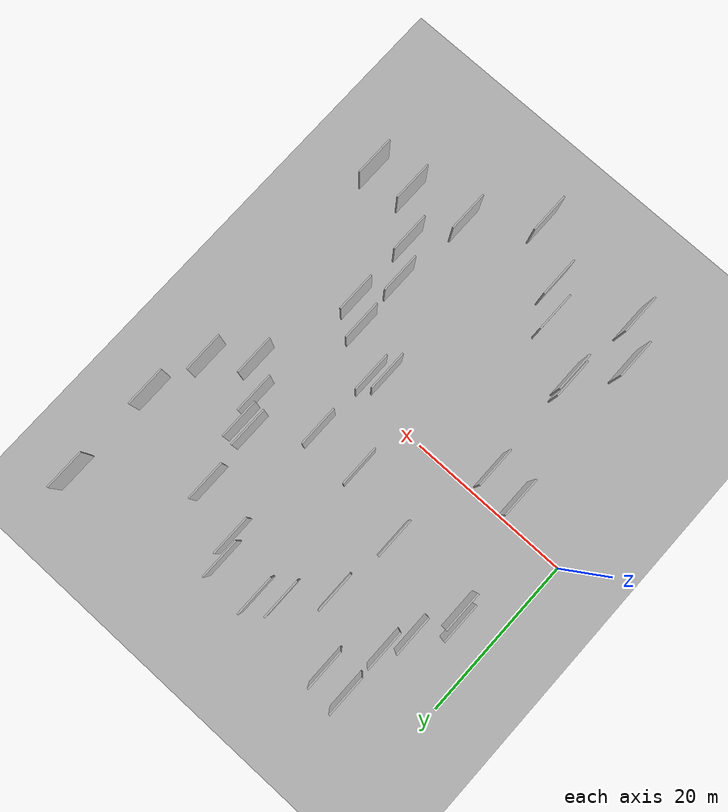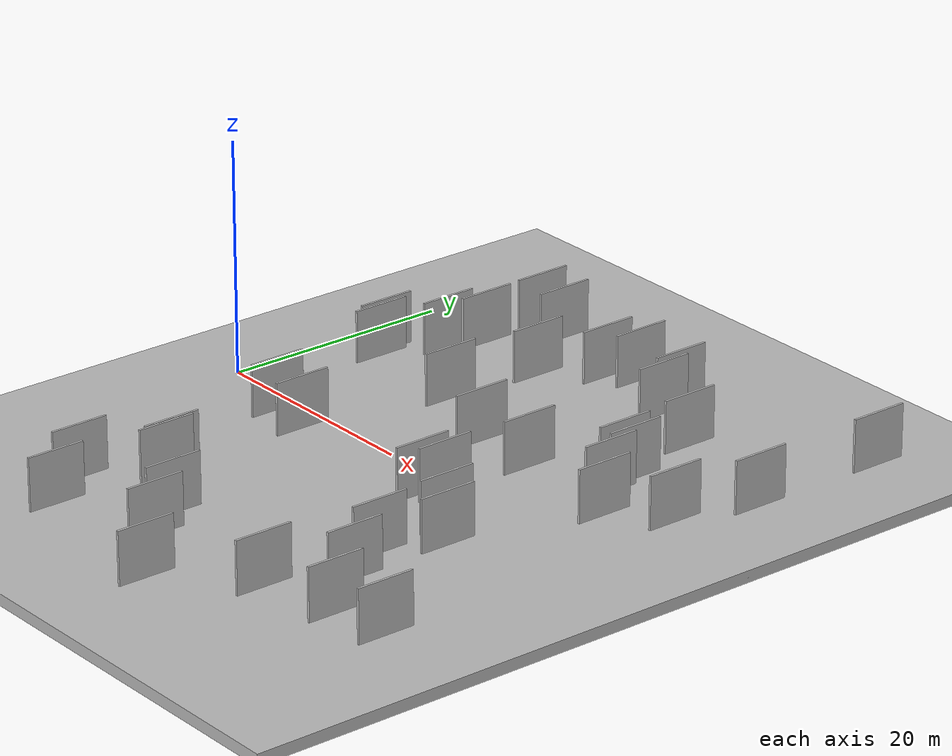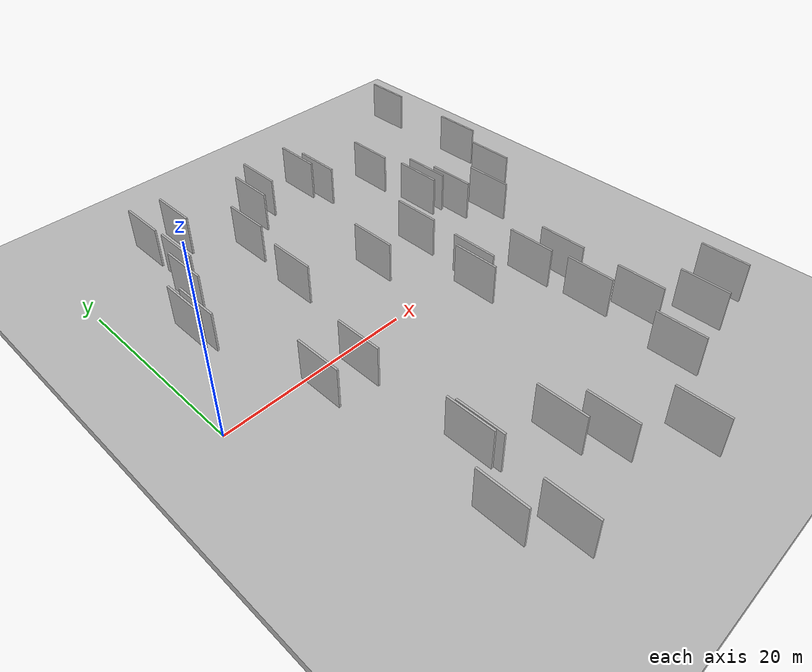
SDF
<?xml version="1.0" encoding="utf-8"?>

<sdf version="1.6">

   <world name="default">

      <gui fullscreen="0">

         <camera name="user_camera">

            <pose>-15 0 4.57585 0 0 0</pose>

            <view_controller>orbit</view_controller>

         </camera>

      </gui>

      <scene>

         <sky>

           <clouds>

             <speed>12</speed>

           </clouds>

         </sky>

         <ambient>0.4 0.4 0.4 1</ambient>

         <background>0.7 0.7 0.7 1</background>

         <shadows>1</shadows>

      </scene>

      <gravity>0 0 -9.8066</gravity>

      <magnetic_field>6e-06 2.3e-05 -4.2e-05</magnetic_field>

      <physics default="0" name="default_physics" type="ode">

         <ode>

            <solver>

               <type>quick</type>

               <iters>10</iters>

               <sor>1.0</sor>

               <use_dynamic_moi_rescaling>0</use_dynamic_moi_rescaling>

            </solver>

            <constraints>

               <cfm>0</cfm>

               <erp>0.2</erp>

               <contact_max_correcting_vel>100</contact_max_correcting_vel>

               <contact_surface_layer>0.001</contact_surface_layer>

            </constraints>

         </ode>

         <max_step_size>0.004</max_step_size>

         <real_time_factor>1</real_time_factor>

         <real_time_update_rate>250</real_time_update_rate>

      </physics>

      <light name="sun" type="directional">

         <cast_shadows>1</cast_shadows>

         <pose>0 0 10 0 0 0</pose>

         <diffuse>0.8 0.8 0.8 1</diffuse>

         <specular>0.2 0.2 0.2 1</specular>

         <attenuation>

            <range>1000</range>

            <constant>0.9</constant>

            <linear>0.01</linear>

            <quadratic>0.001</quadratic>

         </attenuation>

         <direction>-0.5 0.1 -0.9</direction>

      </light>

      <include>

         <name>ground_plane_1</name>

         <uri>model://HANNAS_ground_plane</uri>

         <pose>0 0 0  0 0 0</pose>

      </include>

      <include>

         <name>ground_plane_2</name>

         <uri>model://HANNAS_ground_plane</uri>

         <pose>100 0 0  0 0 0</pose>

      </include>

      <model name="HANNAS_wall_1">

         <static>1</static>

         <pose frame="">33.4776 -5.2390 0.0 0.000000 0.000000 1.570796</pose>

         <link name="link">

            <pose frame="">0 0 2.50 0 0 0</pose>

            <collision name="collision">

               <geometry>

                  <box>

                     <size>5.00 0.2 5.00</size>

                  </box>

               </geometry>

               <max_contacts>10</max_contacts>

               <surface>

                  <contact>

                     <ode/>

                  </contact>

                  <bounce/>

                  <friction>

                     <torsional>

                        <ode/>

                     </torsional>

                     <ode/>

                  </friction>

               </surface>

            </collision>

            <visual name="visual">

               <cast_shadows>0</cast_shadows>

               <geometry>

                  <box>

                     <size>5.00 0.2 5.00</size>

                  </box>

               </geometry>

               <material>

                  <script>

                     <uri>model://HANNAS_wall/materials/scripts</uri>

                     <uri>model://HANNAS_wall/materials/textures</uri>

                     <name>vrc/HANNAS_wall</name>

                  </script>

               </material>

            </visual>

            <self_collide>0</self_collide>

            <enable_wind>0</enable_wind>

            <kinematic>0</kinematic>

         </link>

      </model>

      <model name="HANNAS_wall_2">

         <static>1</static>

         <pose frame="">43.6343 8.6065 0.0 0.000000 0.000000 1.570796</pose>

         <link name="link">

            <pose frame="">0 0 2.50 0 0 0</pose>

            <collision name="collision">

               <geometry>

                  <box>

                     <size>5.00 0.2 5.00</size>

                  </box>

               </geometry>

               <max_contacts>10</max_contacts>

               <surface>

                  <contact>

                     <ode/>

                  </contact>

                  <bounce/>

                  <friction>

                     <torsional>

                        <ode/>

                     </torsional>

                     <ode/>

                  </friction>

               </surface>

            </collision>

            <visual name="visual">

               <cast_shadows>0</cast_shadows>

               <geometry>

                  <box>

                     <size>5.00 0.2 5.00</size>

                  </box>

               </geometry>

               <material>

                  <script>

                     <uri>model://HANNAS_wall/materials/scripts</uri>

                     <uri>model://HANNAS_wall/materials/textures</uri>

                     <name>vrc/HANNAS_wall</name>

                  </script>

               </material>

            </visual>

            <self_collide>0</self_collide>

            <enable_wind>0</enable_wind>

            <kinematic>0</kinematic>

         </link>

      </model>

      <model name="HANNAS_wall_3">

         <static>1</static>

         <pose frame="">7.4464 15.7247 0.0 0.000000 0.000000 1.570796</pose>

         <link name="link">

            <pose frame="">0 0 2.50 0 0 0</pose>

            <collision name="collision">

               <geometry>

                  <box>

                     <size>5.00 0.2 5.00</size>

                  </box>

               </geometry>

               <max_contacts>10</max_contacts>

               <surface>

                  <contact>

                     <ode/>

                  </contact>

                  <bounce/>

                  <friction>

                     <torsional>

                        <ode/>

                     </torsional>

                     <ode/>

                  </friction>

               </surface>

            </collision>

            <visual name="visual">

               <cast_shadows>0</cast_shadows>

               <geometry>

                  <box>

                     <size>5.00 0.2 5.00</size>

                  </box>

               </geometry>

               <material>

                  <script>

                     <uri>model://HANNAS_wall/materials/scripts</uri>

                     <uri>model://HANNAS_wall/materials/textures</uri>

                     <name>vrc/HANNAS_wall</name>

                  </script>

               </material>

            </visual>

            <self_collide>0</self_collide>

            <enable_wind>0</enable_wind>

            <kinematic>0</kinematic>

         </link>

      </model>

      <model name="HANNAS_wall_4">

         <static>1</static>

         <pose frame="">32.9911 -21.9643 0.0 0.000000 0.000000 1.570796</pose>

         <link name="link">

            <pose frame="">0 0 2.50 0 0 0</pose>

            <collision name="collision">

               <geometry>

                  <box>

                     <size>5.00 0.2 5.00</size>

                  </box>

               </geometry>

               <max_contacts>10</max_contacts>

               <surface>

                  <contact>

                     <ode/>

                  </contact>

                  <bounce/>

                  <friction>

                     <torsional>

                        <ode/>

                     </torsional>

                     <ode/>

                  </friction>

               </surface>

            </collision>

            <visual name="visual">

               <cast_shadows>0</cast_shadows>

               <geometry>

                  <box>

                     <size>5.00 0.2 5.00</size>

                  </box>

               </geometry>

               <material>

                  <script>

                     <uri>model://HANNAS_wall/materials/scripts</uri>

                     <uri>model://HANNAS_wall/materials/textures</uri>

                     <name>vrc/HANNAS_wall</name>

                  </script>

               </material>

            </visual>

            <self_collide>0</self_collide>

            <enable_wind>0</enable_wind>

            <kinematic>0</kinematic>

         </link>

      </model>

      <model name="HANNAS_wall_5">

         <static>1</static>

         <pose frame="">11.8727 24.2748 0.0 0.000000 0.000000 1.570796</pose>

         <link name="link">

            <pose frame="">0 0 2.50 0 0 0</pose>

            <collision name="collision">

               <geometry>

                  <box>

                     <size>5.00 0.2 5.00</size>

                  </box>

               </geometry>

               <max_contacts>10</max_contacts>

               <surface>

                  <contact>

                     <ode/>

                  </contact>

                  <bounce/>

                  <friction>

                     <torsional>

                        <ode/>

                     </torsional>

                     <ode/>

                  </friction>

               </surface>

            </collision>

            <visual name="visual">

               <cast_shadows>0</cast_shadows>

               <geometry>

                  <box>

                     <size>5.00 0.2 5.00</size>

                  </box>

               </geometry>

               <material>

                  <script>

                     <uri>model://HANNAS_wall/materials/scripts</uri>

                     <uri>model://HANNAS_wall/materials/textures</uri>

                     <name>vrc/HANNAS_wall</name>

                  </script>

               </material>

            </visual>

            <self_collide>0</self_collide>

            <enable_wind>0</enable_wind>

            <kinematic>0</kinematic>

         </link>

      </model>

      <model name="HANNAS_wall_6">

         <static>1</static>

         <pose frame="">11.8024 -25.7305 0.0 0.000000 0.000000 1.570796</pose>

         <link name="link">

            <pose frame="">0 0 2.50 0 0 0</pose>

            <collision name="collision">

               <geometry>

                  <box>

                     <size>5.00 0.2 5.00</size>

                  </box>

               </geometry>

               <max_contacts>10</max_contacts>

               <surface>

                  <contact>

                     <ode/>

                  </contact>

                  <bounce/>

                  <friction>

                     <torsional>

                        <ode/>

                     </torsional>

                     <ode/>

                  </friction>

               </surface>

            </collision>

            <visual name="visual">

               <cast_shadows>0</cast_shadows>

               <geometry>

                  <box>

                     <size>5.00 0.2 5.00</size>

                  </box>

               </geometry>

               <material>

                  <script>

                     <uri>model://HANNAS_wall/materials/scripts</uri>

                     <uri>model://HANNAS_wall/materials/textures</uri>

                     <name>vrc/HANNAS_wall</name>

                  </script>

               </material>

            </visual>

            <self_collide>0</self_collide>

            <enable_wind>0</enable_wind>

            <kinematic>0</kinematic>

         </link>

      </model>

      <model name="HANNAS_wall_7">

         <static>1</static>

         <pose frame="">26.3232 -27.7546 0.0 0.000000 0.000000 1.570796</pose>

         <link name="link">

            <pose frame="">0 0 2.50 0 0 0</pose>

            <collision name="collision">

               <geometry>

                  <box>

                     <size>5.00 0.2 5.00</size>

                  </box>

               </geometry>

               <max_contacts>10</max_contacts>

               <surface>

                  <contact>

                     <ode/>

                  </contact>

                  <bounce/>

                  <friction>

                     <torsional>

                        <ode/>

                     </torsional>

                     <ode/>

                  </friction>

               </surface>

            </collision>

            <visual name="visual">

               <cast_shadows>0</cast_shadows>

               <geometry>

                  <box>

                     <size>5.00 0.2 5.00</size>

                  </box>

               </geometry>

               <material>

                  <script>

                     <uri>model://HANNAS_wall/materials/scripts</uri>

                     <uri>model://HANNAS_wall/materials/textures</uri>

                     <name>vrc/HANNAS_wall</name>

                  </script>

               </material>

            </visual>

            <self_collide>0</self_collide>

            <enable_wind>0</enable_wind>

            <kinematic>0</kinematic>

         </link>

      </model>

      <model name="HANNAS_wall_8">

         <static>1</static>

         <pose frame="">27.7636 -3.0162 0.0 0.000000 0.000000 1.570796</pose>

         <link name="link">

            <pose frame="">0 0 2.50 0 0 0</pose>

            <collision name="collision">

               <geometry>

                  <box>

                     <size>5.00 0.2 5.00</size>

                  </box>

               </geometry>

               <max_contacts>10</max_contacts>

               <surface>

                  <contact>

                     <ode/>

                  </contact>

                  <bounce/>

                  <friction>

                     <torsional>

                        <ode/>

                     </torsional>

                     <ode/>

                  </friction>

               </surface>

            </collision>

            <visual name="visual">

               <cast_shadows>0</cast_shadows>

               <geometry>

                  <box>

                     <size>5.00 0.2 5.00</size>

                  </box>

               </geometry>

               <material>

                  <script>

                     <uri>model://HANNAS_wall/materials/scripts</uri>

                     <uri>model://HANNAS_wall/materials/textures</uri>

                     <name>vrc/HANNAS_wall</name>

                  </script>

               </material>

            </visual>

            <self_collide>0</self_collide>

            <enable_wind>0</enable_wind>

            <kinematic>0</kinematic>

         </link>

      </model>

      <model name="HANNAS_wall_9">

         <static>1</static>

         <pose frame="">39.4000 5.2313 0.0 0.000000 0.000000 1.570796</pose>

         <link name="link">

            <pose frame="">0 0 2.50 0 0 0</pose>

            <collision name="collision">

               <geometry>

                  <box>

                     <size>5.00 0.2 5.00</size>

                  </box>

               </geometry>

               <max_contacts>10</max_contacts>

               <surface>

                  <contact>

                     <ode/>

                  </contact>

                  <bounce/>

                  <friction>

                     <torsional>

                        <ode/>

                     </torsional>

                     <ode/>

                  </friction>

               </surface>

            </collision>

            <visual name="visual">

               <cast_shadows>0</cast_shadows>

               <geometry>

                  <box>

                     <size>5.00 0.2 5.00</size>

                  </box>

               </geometry>

               <material>

                  <script>

                     <uri>model://HANNAS_wall/materials/scripts</uri>

                     <uri>model://HANNAS_wall/materials/textures</uri>

                     <name>vrc/HANNAS_wall</name>

                  </script>

               </material>

            </visual>

            <self_collide>0</self_collide>

            <enable_wind>0</enable_wind>

            <kinematic>0</kinematic>

         </link>

      </model>

      <model name="HANNAS_wall_10">

         <static>1</static>

         <pose frame="">5.2916 10.5052 0.0 0.000000 0.000000 1.570796</pose>

         <link name="link">

            <pose frame="">0 0 2.50 0 0 0</pose>

            <collision name="collision">

               <geometry>

                  <box>

                     <size>5.00 0.2 5.00</size>

                  </box>

               </geometry>

               <max_contacts>10</max_contacts>

               <surface>

                  <contact>

                     <ode/>

                  </contact>

                  <bounce/>

                  <friction>

                     <torsional>

                        <ode/>

                     </torsional>

                     <ode/>

                  </friction>

               </surface>

            </collision>

            <visual name="visual">

               <cast_shadows>0</cast_shadows>

               <geometry>

                  <box>

                     <size>5.00 0.2 5.00</size>

                  </box>

               </geometry>

               <material>

                  <script>

                     <uri>model://HANNAS_wall/materials/scripts</uri>

                     <uri>model://HANNAS_wall/materials/textures</uri>

                     <name>vrc/HANNAS_wall</name>

                  </script>

               </material>

            </visual>

            <self_collide>0</self_collide>

            <enable_wind>0</enable_wind>

            <kinematic>0</kinematic>

         </link>

      </model>

      <model name="HANNAS_wall_11">

         <static>1</static>

         <pose frame="">8.5315 24.7250 0.0 0.000000 0.000000 1.570796</pose>

         <link name="link">

            <pose frame="">0 0 2.50 0 0 0</pose>

            <collision name="collision">

               <geometry>

                  <box>

                     <size>5.00 0.2 5.00</size>

                  </box>

               </geometry>

               <max_contacts>10</max_contacts>

               <surface>

                  <contact>

                     <ode/>

                  </contact>

                  <bounce/>

                  <friction>

                     <torsional>

                        <ode/>

                     </torsional>

                     <ode/>

                  </friction>

               </surface>

            </collision>

            <visual name="visual">

               <cast_shadows>0</cast_shadows>

               <geometry>

                  <box>

                     <size>5.00 0.2 5.00</size>

                  </box>

               </geometry>

               <material>

                  <script>

                     <uri>model://HANNAS_wall/materials/scripts</uri>

                     <uri>model://HANNAS_wall/materials/textures</uri>

                     <name>vrc/HANNAS_wall</name>

                  </script>

               </material>

            </visual>

            <self_collide>0</self_collide>

            <enable_wind>0</enable_wind>

            <kinematic>0</kinematic>

         </link>

      </model>

      <model name="HANNAS_wall_12">

         <static>1</static>

         <pose frame="">4.6762 11.5054 0.0 0.000000 0.000000 1.570796</pose>

         <link name="link">

            <pose frame="">0 0 2.50 0 0 0</pose>

            <collision name="collision">

               <geometry>

                  <box>

                     <size>5.00 0.2 5.00</size>

                  </box>

               </geometry>

               <max_contacts>10</max_contacts>

               <surface>

                  <contact>

                     <ode/>

                  </contact>

                  <bounce/>

                  <friction>

                     <torsional>

                        <ode/>

                     </torsional>

                     <ode/>

                  </friction>

               </surface>

            </collision>

            <visual name="visual">

               <cast_shadows>0</cast_shadows>

               <geometry>

                  <box>

                     <size>5.00 0.2 5.00</size>

                  </box>

               </geometry>

               <material>

                  <script>

                     <uri>model://HANNAS_wall/materials/scripts</uri>

                     <uri>model://HANNAS_wall/materials/textures</uri>

                     <name>vrc/HANNAS_wall</name>

                  </script>

               </material>

            </visual>

            <self_collide>0</self_collide>

            <enable_wind>0</enable_wind>

            <kinematic>0</kinematic>

         </link>

      </model>

      <model name="HANNAS_wall_13">

         <static>1</static>

         <pose frame="">35.9308 11.2643 0.0 0.000000 0.000000 1.570796</pose>

         <link name="link">

            <pose frame="">0 0 2.50 0 0 0</pose>

            <collision name="collision">

               <geometry>

                  <box>

                     <size>5.00 0.2 5.00</size>

                  </box>

               </geometry>

               <max_contacts>10</max_contacts>

               <surface>

                  <contact>

                     <ode/>

                  </contact>

                  <bounce/>

                  <friction>

                     <torsional>

                        <ode/>

                     </torsional>

                     <ode/>

                  </friction>

               </surface>

            </collision>

            <visual name="visual">

               <cast_shadows>0</cast_shadows>

               <geometry>

                  <box>

                     <size>5.00 0.2 5.00</size>

                  </box>

               </geometry>

               <material>

                  <script>

                     <uri>model://HANNAS_wall/materials/scripts</uri>

                     <uri>model://HANNAS_wall/materials/textures</uri>

                     <name>vrc/HANNAS_wall</name>

                  </script>

               </material>

            </visual>

            <self_collide>0</self_collide>

            <enable_wind>0</enable_wind>

            <kinematic>0</kinematic>

         </link>

      </model>

      <model name="HANNAS_wall_14">

         <static>1</static>

         <pose frame="">19.9749 22.0375 0.0 0.000000 0.000000 1.570796</pose>

         <link name="link">

            <pose frame="">0 0 2.50 0 0 0</pose>

            <collision name="collision">

               <geometry>

                  <box>

                     <size>5.00 0.2 5.00</size>

                  </box>

               </geometry>

               <max_contacts>10</max_contacts>

               <surface>

                  <contact>

                     <ode/>

                  </contact>

                  <bounce/>

                  <friction>

                     <torsional>

                        <ode/>

                     </torsional>

                     <ode/>

                  </friction>

               </surface>

            </collision>

            <visual name="visual">

               <cast_shadows>0</cast_shadows>

               <geometry>

                  <box>

                     <size>5.00 0.2 5.00</size>

                  </box>

               </geometry>

               <material>

                  <script>

                     <uri>model://HANNAS_wall/materials/scripts</uri>

                     <uri>model://HANNAS_wall/materials/textures</uri>

                     <name>vrc/HANNAS_wall</name>

                  </script>

               </material>

            </visual>

            <self_collide>0</self_collide>

            <enable_wind>0</enable_wind>

            <kinematic>0</kinematic>

         </link>

      </model>

      <model name="HANNAS_wall_15">

         <static>1</static>

         <pose frame="">23.1992 6.4730 0.0 0.000000 0.000000 1.570796</pose>

         <link name="link">

            <pose frame="">0 0 2.50 0 0 0</pose>

            <collision name="collision">

               <geometry>

                  <box>

                     <size>5.00 0.2 5.00</size>

                  </box>

               </geometry>

               <max_contacts>10</max_contacts>

               <surface>

                  <contact>

                     <ode/>

                  </contact>

                  <bounce/>

                  <friction>

                     <torsional>

                        <ode/>

                     </torsional>

                     <ode/>

                  </friction>

               </surface>

            </collision>

            <visual name="visual">

               <cast_shadows>0</cast_shadows>

               <geometry>

                  <box>

                     <size>5.00 0.2 5.00</size>

                  </box>

               </geometry>

               <material>

                  <script>

                     <uri>model://HANNAS_wall/materials/scripts</uri>

                     <uri>model://HANNAS_wall/materials/textures</uri>

                     <name>vrc/HANNAS_wall</name>

                  </script>

               </material>

            </visual>

            <self_collide>0</self_collide>

            <enable_wind>0</enable_wind>

            <kinematic>0</kinematic>

         </link>

      </model>

      <model name="HANNAS_wall_16">

         <static>1</static>

         <pose frame="">8.6217 18.7740 0.0 0.000000 0.000000 1.570796</pose>

         <link name="link">

            <pose frame="">0 0 2.50 0 0 0</pose>

            <collision name="collision">

               <geometry>

                  <box>

                     <size>5.00 0.2 5.00</size>

                  </box>

               </geometry>

               <max_contacts>10</max_contacts>

               <surface>

                  <contact>

                     <ode/>

                  </contact>

                  <bounce/>

                  <friction>

                     <torsional>

                        <ode/>

                     </torsional>

                     <ode/>

                  </friction>

               </surface>

            </collision>

            <visual name="visual">

               <cast_shadows>0</cast_shadows>

               <geometry>

                  <box>

                     <size>5.00 0.2 5.00</size>

                  </box>

               </geometry>

               <material>

                  <script>

                     <uri>model://HANNAS_wall/materials/scripts</uri>

                     <uri>model://HANNAS_wall/materials/textures</uri>

                     <name>vrc/HANNAS_wall</name>

                  </script>

               </material>

            </visual>

            <self_collide>0</self_collide>

            <enable_wind>0</enable_wind>

            <kinematic>0</kinematic>

         </link>

      </model>

      <model name="HANNAS_wall_17">

         <static>1</static>

         <pose frame="">22.2112 23.6121 0.0 0.000000 0.000000 1.570796</pose>

         <link name="link">

            <pose frame="">0 0 2.50 0 0 0</pose>

            <collision name="collision">

               <geometry>

                  <box>

                     <size>5.00 0.2 5.00</size>

                  </box>

               </geometry>

               <max_contacts>10</max_contacts>

               <surface>

                  <contact>

                     <ode/>

                  </contact>

                  <bounce/>

                  <friction>

                     <torsional>

                        <ode/>

                     </torsional>

                     <ode/>

                  </friction>

               </surface>

            </collision>

            <visual name="visual">

               <cast_shadows>0</cast_shadows>

               <geometry>

                  <box>

                     <size>5.00 0.2 5.00</size>

                  </box>

               </geometry>

               <material>

                  <script>

                     <uri>model://HANNAS_wall/materials/scripts</uri>

                     <uri>model://HANNAS_wall/materials/textures</uri>

                     <name>vrc/HANNAS_wall</name>

                  </script>

               </material>

            </visual>

            <self_collide>0</self_collide>

            <enable_wind>0</enable_wind>

            <kinematic>0</kinematic>

         </link>

      </model>

      <model name="HANNAS_wall_18">

         <static>1</static>

         <pose frame="">36.1273 -15.9547 0.0 0.000000 0.000000 1.570796</pose>

         <link name="link">

            <pose frame="">0 0 2.50 0 0 0</pose>

            <collision name="collision">

               <geometry>

                  <box>

                     <size>5.00 0.2 5.00</size>

                  </box>

               </geometry>

               <max_contacts>10</max_contacts>

               <surface>

                  <contact>

                     <ode/>

                  </contact>

                  <bounce/>

                  <friction>

                     <torsional>

                        <ode/>

                     </torsional>

                     <ode/>

                  </friction>

               </surface>

            </collision>

            <visual name="visual">

               <cast_shadows>0</cast_shadows>

               <geometry>

                  <box>

                     <size>5.00 0.2 5.00</size>

                  </box>

               </geometry>

               <material>

                  <script>

                     <uri>model://HANNAS_wall/materials/scripts</uri>

                     <uri>model://HANNAS_wall/materials/textures</uri>

                     <name>vrc/HANNAS_wall</name>

                  </script>

               </material>

            </visual>

            <self_collide>0</self_collide>

            <enable_wind>0</enable_wind>

            <kinematic>0</kinematic>

         </link>

      </model>

      <model name="HANNAS_wall_19">

         <static>1</static>

         <pose frame="">9.0757 -21.6731 0.0 0.000000 0.000000 1.570796</pose>

         <link name="link">

            <pose frame="">0 0 2.50 0 0 0</pose>

            <collision name="collision">

               <geometry>

                  <box>

                     <size>5.00 0.2 5.00</size>

                  </box>

               </geometry>

               <max_contacts>10</max_contacts>

               <surface>

                  <contact>

                     <ode/>

                  </contact>

                  <bounce/>

                  <friction>

                     <torsional>

                        <ode/>

                     </torsional>

                     <ode/>

                  </friction>

               </surface>

            </collision>

            <visual name="visual">

               <cast_shadows>0</cast_shadows>

               <geometry>

                  <box>

                     <size>5.00 0.2 5.00</size>

                  </box>

               </geometry>

               <material>

                  <script>

                     <uri>model://HANNAS_wall/materials/scripts</uri>

                     <uri>model://HANNAS_wall/materials/textures</uri>

                     <name>vrc/HANNAS_wall</name>

                  </script>

               </material>

            </visual>

            <self_collide>0</self_collide>

            <enable_wind>0</enable_wind>

            <kinematic>0</kinematic>

         </link>

      </model>

      <model name="HANNAS_wall_20">

         <static>1</static>

         <pose frame="">12.6627 -15.5733 0.0 0.000000 0.000000 1.570796</pose>

         <link name="link">

            <pose frame="">0 0 2.50 0 0 0</pose>

            <collision name="collision">

               <geometry>

                  <box>

                     <size>5.00 0.2 5.00</size>

                  </box>

               </geometry>

               <max_contacts>10</max_contacts>

               <surface>

                  <contact>

                     <ode/>

                  </contact>

                  <bounce/>

                  <friction>

                     <torsional>

                        <ode/>

                     </torsional>

                     <ode/>

                  </friction>

               </surface>

            </collision>

            <visual name="visual">

               <cast_shadows>0</cast_shadows>

               <geometry>

                  <box>

                     <size>5.00 0.2 5.00</size>

                  </box>

               </geometry>

               <material>

                  <script>

                     <uri>model://HANNAS_wall/materials/scripts</uri>

                     <uri>model://HANNAS_wall/materials/textures</uri>

                     <name>vrc/HANNAS_wall</name>

                  </script>

               </material>

            </visual>

            <self_collide>0</self_collide>

            <enable_wind>0</enable_wind>

            <kinematic>0</kinematic>

         </link>

      </model>

      <model name="HANNAS_wall_21">

         <static>1</static>

         <pose frame="">12.5439 -2.9651 0.0 0.000000 0.000000 1.570796</pose>

         <link name="link">

            <pose frame="">0 0 2.50 0 0 0</pose>

            <collision name="collision">

               <geometry>

                  <box>

                     <size>5.00 0.2 5.00</size>

                  </box>

               </geometry>

               <max_contacts>10</max_contacts>

               <surface>

                  <contact>

                     <ode/>

                  </contact>

                  <bounce/>

                  <friction>

                     <torsional>

                        <ode/>

                     </torsional>

                     <ode/>

                  </friction>

               </surface>

            </collision>

            <visual name="visual">

               <cast_shadows>0</cast_shadows>

               <geometry>

                  <box>

                     <size>5.00 0.2 5.00</size>

                  </box>

               </geometry>

               <material>

                  <script>

                     <uri>model://HANNAS_wall/materials/scripts</uri>

                     <uri>model://HANNAS_wall/materials/textures</uri>

                     <name>vrc/HANNAS_wall</name>

                  </script>

               </material>

            </visual>

            <self_collide>0</self_collide>

            <enable_wind>0</enable_wind>

            <kinematic>0</kinematic>

         </link>

      </model>

      <model name="HANNAS_wall_22">

         <static>1</static>

         <pose frame="">16.3174 17.8196 0.0 0.000000 0.000000 1.570796</pose>

         <link name="link">

            <pose frame="">0 0 2.50 0 0 0</pose>

            <collision name="collision">

               <geometry>

                  <box>

                     <size>5.00 0.2 5.00</size>

                  </box>

               </geometry>

               <max_contacts>10</max_contacts>

               <surface>

                  <contact>

                     <ode/>

                  </contact>

                  <bounce/>

                  <friction>

                     <torsional>

                        <ode/>

                     </torsional>

                     <ode/>

                  </friction>

               </surface>

            </collision>

            <visual name="visual">

               <cast_shadows>0</cast_shadows>

               <geometry>

                  <box>

                     <size>5.00 0.2 5.00</size>

                  </box>

               </geometry>

               <material>

                  <script>

                     <uri>model://HANNAS_wall/materials/scripts</uri>

                     <uri>model://HANNAS_wall/materials/textures</uri>

                     <name>vrc/HANNAS_wall</name>

                  </script>

               </material>

            </visual>

            <self_collide>0</self_collide>

            <enable_wind>0</enable_wind>

            <kinematic>0</kinematic>

         </link>

      </model>

      <model name="HANNAS_wall_23">

         <static>1</static>

         <pose frame="">28.2531 20.7871 0.0 0.000000 0.000000 1.570796</pose>

         <link name="link">

            <pose frame="">0 0 2.50 0 0 0</pose>

            <collision name="collision">

               <geometry>

                  <box>

                     <size>5.00 0.2 5.00</size>

                  </box>

               </geometry>

               <max_contacts>10</max_contacts>

               <surface>

                  <contact>

                     <ode/>

                  </contact>

                  <bounce/>

                  <friction>

                     <torsional>

                        <ode/>

                     </torsional>

                     <ode/>

                  </friction>

               </surface>

            </collision>

            <visual name="visual">

               <cast_shadows>0</cast_shadows>

               <geometry>

                  <box>

                     <size>5.00 0.2 5.00</size>

                  </box>

               </geometry>

               <material>

                  <script>

                     <uri>model://HANNAS_wall/materials/scripts</uri>

                     <uri>model://HANNAS_wall/materials/textures</uri>

                     <name>vrc/HANNAS_wall</name>

                  </script>

               </material>

            </visual>

            <self_collide>0</self_collide>

            <enable_wind>0</enable_wind>

            <kinematic>0</kinematic>

         </link>

      </model>

      <model name="HANNAS_wall_24">

         <static>1</static>

         <pose frame="">34.6254 11.3175 0.0 0.000000 0.000000 1.570796</pose>

         <link name="link">

            <pose frame="">0 0 2.50 0 0 0</pose>

            <collision name="collision">

               <geometry>

                  <box>

                     <size>5.00 0.2 5.00</size>

                  </box>

               </geometry>

               <max_contacts>10</max_contacts>

               <surface>

                  <contact>

                     <ode/>

                  </contact>

                  <bounce/>

                  <friction>

                     <torsional>

                        <ode/>

                     </torsional>

                     <ode/>

                  </friction>

               </surface>

            </collision>

            <visual name="visual">

               <cast_shadows>0</cast_shadows>

               <geometry>

                  <box>

                     <size>5.00 0.2 5.00</size>

                  </box>

               </geometry>

               <material>

                  <script>

                     <uri>model://HANNAS_wall/materials/scripts</uri>

                     <uri>model://HANNAS_wall/materials/textures</uri>

                     <name>vrc/HANNAS_wall</name>

                  </script>

               </material>

            </visual>

            <self_collide>0</self_collide>

            <enable_wind>0</enable_wind>

            <kinematic>0</kinematic>

         </link>

      </model>

      <model name="HANNAS_wall_25">

         <static>1</static>

         <pose frame="">39.7363 -20.5003 0.0 0.000000 0.000000 1.570796</pose>

         <link name="link">

            <pose frame="">0 0 2.50 0 0 0</pose>

            <collision name="collision">

               <geometry>

                  <box>

                     <size>5.00 0.2 5.00</size>

                  </box>

               </geometry>

               <max_contacts>10</max_contacts>

               <surface>

                  <contact>

                     <ode/>

                  </contact>

                  <bounce/>

                  <friction>

                     <torsional>

                        <ode/>

                     </torsional>

                     <ode/>

                  </friction>

               </surface>

            </collision>

            <visual name="visual">

               <cast_shadows>0</cast_shadows>

               <geometry>

                  <box>

                     <size>5.00 0.2 5.00</size>

                  </box>

               </geometry>

               <material>

                  <script>

                     <uri>model://HANNAS_wall/materials/scripts</uri>

                     <uri>model://HANNAS_wall/materials/textures</uri>

                     <name>vrc/HANNAS_wall</name>

                  </script>

               </material>

            </visual>

            <self_collide>0</self_collide>

            <enable_wind>0</enable_wind>

            <kinematic>0</kinematic>

         </link>

      </model>

      <model name="HANNAS_wall_26">

         <static>1</static>

         <pose frame="">8.5256 -2.3839 0.0 0.000000 0.000000 1.570796</pose>

         <link name="link">

            <pose frame="">0 0 2.50 0 0 0</pose>

            <collision name="collision">

               <geometry>

                  <box>

                     <size>5.00 0.2 5.00</size>

                  </box>

               </geometry>

               <max_contacts>10</max_contacts>

               <surface>

                  <contact>

                     <ode/>

                  </contact>

                  <bounce/>

                  <friction>

                     <torsional>

                        <ode/>

                     </torsional>

                     <ode/>

                  </friction>

               </surface>

            </collision>

            <visual name="visual">

               <cast_shadows>0</cast_shadows>

               <geometry>

                  <box>

                     <size>5.00 0.2 5.00</size>

                  </box>

               </geometry>

               <material>

                  <script>

                     <uri>model://HANNAS_wall/materials/scripts</uri>

                     <uri>model://HANNAS_wall/materials/textures</uri>

                     <name>vrc/HANNAS_wall</name>

                  </script>

               </material>

            </visual>

            <self_collide>0</self_collide>

            <enable_wind>0</enable_wind>

            <kinematic>0</kinematic>

         </link>

      </model>

      <model name="HANNAS_wall_27">

         <static>1</static>

         <pose frame="">15.4486 9.5688 0.0 0.000000 0.000000 1.570796</pose>

         <link name="link">

            <pose frame="">0 0 2.50 0 0 0</pose>

            <collision name="collision">

               <geometry>

                  <box>

                     <size>5.00 0.2 5.00</size>

                  </box>

               </geometry>

               <max_contacts>10</max_contacts>

               <surface>

                  <contact>

                     <ode/>

                  </contact>

                  <bounce/>

                  <friction>

                     <torsional>

                        <ode/>

                     </torsional>

                     <ode/>

                  </friction>

               </surface>

            </collision>

            <visual name="visual">

               <cast_shadows>0</cast_shadows>

               <geometry>

                  <box>

                     <size>5.00 0.2 5.00</size>

                  </box>

               </geometry>

               <material>

                  <script>

                     <uri>model://HANNAS_wall/materials/scripts</uri>

                     <uri>model://HANNAS_wall/materials/textures</uri>

                     <name>vrc/HANNAS_wall</name>

                  </script>

               </material>

            </visual>

            <self_collide>0</self_collide>

            <enable_wind>0</enable_wind>

            <kinematic>0</kinematic>

         </link>

      </model>

      <model name="HANNAS_wall_28">

         <static>1</static>

         <pose frame="">12.9615 -16.2947 0.0 0.000000 0.000000 1.570796</pose>

         <link name="link">

            <pose frame="">0 0 2.50 0 0 0</pose>

            <collision name="collision">

               <geometry>

                  <box>

                     <size>5.00 0.2 5.00</size>

                  </box>

               </geometry>

               <max_contacts>10</max_contacts>

               <surface>

                  <contact>

                     <ode/>

                  </contact>

                  <bounce/>

                  <friction>

                     <torsional>

                        <ode/>

                     </torsional>

                     <ode/>

                  </friction>

               </surface>

            </collision>

            <visual name="visual">

               <cast_shadows>0</cast_shadows>

               <geometry>

                  <box>

                     <size>5.00 0.2 5.00</size>

                  </box>

               </geometry>

               <material>

                  <script>

                     <uri>model://HANNAS_wall/materials/scripts</uri>

                     <uri>model://HANNAS_wall/materials/textures</uri>

                     <name>vrc/HANNAS_wall</name>

                  </script>

               </material>

            </visual>

            <self_collide>0</self_collide>

            <enable_wind>0</enable_wind>

            <kinematic>0</kinematic>

         </link>

      </model>

      <model name="HANNAS_wall_29">

         <static>1</static>

         <pose frame="">29.2244 6.2898 0.0 0.000000 0.000000 1.570796</pose>

         <link name="link">

            <pose frame="">0 0 2.50 0 0 0</pose>

            <collision name="collision">

               <geometry>

                  <box>

                     <size>5.00 0.2 5.00</size>

                  </box>

               </geometry>

               <max_contacts>10</max_contacts>

               <surface>

                  <contact>

                     <ode/>

                  </contact>

                  <bounce/>

                  <friction>

                     <torsional>

                        <ode/>

                     </torsional>

                     <ode/>

                  </friction>

               </surface>

            </collision>

            <visual name="visual">

               <cast_shadows>0</cast_shadows>

               <geometry>

                  <box>

                     <size>5.00 0.2 5.00</size>

                  </box>

               </geometry>

               <material>

                  <script>

                     <uri>model://HANNAS_wall/materials/scripts</uri>

                     <uri>model://HANNAS_wall/materials/textures</uri>

                     <name>vrc/HANNAS_wall</name>

                  </script>

               </material>

            </visual>

            <self_collide>0</self_collide>

            <enable_wind>0</enable_wind>

            <kinematic>0</kinematic>

         </link>

      </model>

      <model name="HANNAS_wall_30">

         <static>1</static>

         <pose frame="">45.7859 27.4274 0.0 0.000000 0.000000 1.570796</pose>

         <link name="link">

            <pose frame="">0 0 2.50 0 0 0</pose>

            <collision name="collision">

               <geometry>

                  <box>

                     <size>5.00 0.2 5.00</size>

                  </box>

               </geometry>

               <max_contacts>10</max_contacts>

               <surface>

                  <contact>

                     <ode/>

                  </contact>

                  <bounce/>

                  <friction>

                     <torsional>

                        <ode/>

                     </torsional>

                     <ode/>

                  </friction>

               </surface>

            </collision>

            <visual name="visual">

               <cast_shadows>0</cast_shadows>

               <geometry>

                  <box>

                     <size>5.00 0.2 5.00</size>

                  </box>

               </geometry>

               <material>

                  <script>

                     <uri>model://HANNAS_wall/materials/scripts</uri>

                     <uri>model://HANNAS_wall/materials/textures</uri>

                     <name>vrc/HANNAS_wall</name>

                  </script>

               </material>

            </visual>

            <self_collide>0</self_collide>

            <enable_wind>0</enable_wind>

            <kinematic>0</kinematic>

         </link>

      </model>

      <model name="HANNAS_wall_31">

         <static>1</static>

         <pose frame="">34.0822 18.3900 0.0 0.000000 0.000000 1.570796</pose>

         <link name="link">

            <pose frame="">0 0 2.50 0 0 0</pose>

            <collision name="collision">

               <geometry>

                  <box>

                     <size>5.00 0.2 5.00</size>

                  </box>

               </geometry>

               <max_contacts>10</max_contacts>

               <surface>

                  <contact>

                     <ode/>

                  </contact>

                  <bounce/>

                  <friction>

                     <torsional>

                        <ode/>

                     </torsional>

                     <ode/>

                  </friction>

               </surface>

            </collision>

            <visual name="visual">

               <cast_shadows>0</cast_shadows>

               <geometry>

                  <box>

                     <size>5.00 0.2 5.00</size>

                  </box>

               </geometry>

               <material>

                  <script>

                     <uri>model://HANNAS_wall/materials/scripts</uri>

                     <uri>model://HANNAS_wall/materials/textures</uri>

                     <name>vrc/HANNAS_wall</name>

                  </script>

               </material>

            </visual>

            <self_collide>0</self_collide>

            <enable_wind>0</enable_wind>

            <kinematic>0</kinematic>

         </link>

      </model>

      <model name="HANNAS_wall_32">

         <static>1</static>

         <pose frame="">18.7188 -19.8204 0.0 0.000000 0.000000 1.570796</pose>

         <link name="link">

            <pose frame="">0 0 2.50 0 0 0</pose>

            <collision name="collision">

               <geometry>

                  <box>

                     <size>5.00 0.2 5.00</size>

                  </box>

               </geometry>

               <max_contacts>10</max_contacts>

               <surface>

                  <contact>

                     <ode/>

                  </contact>

                  <bounce/>

                  <friction>

                     <torsional>

                        <ode/>

                     </torsional>

                     <ode/>

                  </friction>

               </surface>

            </collision>

            <visual name="visual">

               <cast_shadows>0</cast_shadows>

               <geometry>

                  <box>

                     <size>5.00 0.2 5.00</size>

                  </box>

               </geometry>

               <material>

                  <script>

                     <uri>model://HANNAS_wall/materials/scripts</uri>

                     <uri>model://HANNAS_wall/materials/textures</uri>

                     <name>vrc/HANNAS_wall</name>

                  </script>

               </material>

            </visual>

            <self_collide>0</self_collide>

            <enable_wind>0</enable_wind>

            <kinematic>0</kinematic>

         </link>

      </model>

      <model name="HANNAS_wall_33">

         <static>1</static>

         <pose frame="">36.6470 8.2010 0.0 0.000000 0.000000 1.570796</pose>

         <link name="link">

            <pose frame="">0 0 2.50 0 0 0</pose>

            <collision name="collision">

               <geometry>

                  <box>

                     <size>5.00 0.2 5.00</size>

                  </box>

               </geometry>

               <max_contacts>10</max_contacts>

               <surface>

                  <contact>

                     <ode/>

                  </contact>

                  <bounce/>

                  <friction>

                     <torsional>

                        <ode/>

                     </torsional>

                     <ode/>

                  </friction>

               </surface>

            </collision>

            <visual name="visual">

               <cast_shadows>0</cast_shadows>

               <geometry>

                  <box>

                     <size>5.00 0.2 5.00</size>

                  </box>

               </geometry>

               <material>

                  <script>

                     <uri>model://HANNAS_wall/materials/scripts</uri>

                     <uri>model://HANNAS_wall/materials/textures</uri>

                     <name>vrc/HANNAS_wall</name>

                  </script>

               </material>

            </visual>

            <self_collide>0</self_collide>

            <enable_wind>0</enable_wind>

            <kinematic>0</kinematic>

         </link>

      </model>

      <model name="HANNAS_wall_34">

         <static>1</static>

         <pose frame="">45.6339 15.4020 0.0 0.000000 0.000000 1.570796</pose>

         <link name="link">

            <pose frame="">0 0 2.50 0 0 0</pose>

            <collision name="collision">

               <geometry>

                  <box>

                     <size>5.00 0.2 5.00</size>

                  </box>

               </geometry>

               <max_contacts>10</max_contacts>

               <surface>

                  <contact>

                     <ode/>

                  </contact>

                  <bounce/>

                  <friction>

                     <torsional>

                        <ode/>

                     </torsional>

                     <ode/>

                  </friction>

               </surface>

            </collision>

            <visual name="visual">

               <cast_shadows>0</cast_shadows>

               <geometry>

                  <box>

                     <size>5.00 0.2 5.00</size>

                  </box>

               </geometry>

               <material>

                  <script>

                     <uri>model://HANNAS_wall/materials/scripts</uri>

                     <uri>model://HANNAS_wall/materials/textures</uri>

                     <name>vrc/HANNAS_wall</name>

                  </script>

               </material>

            </visual>

            <self_collide>0</self_collide>

            <enable_wind>0</enable_wind>

            <kinematic>0</kinematic>

         </link>

      </model>

      <model name="HANNAS_wall_35">

         <static>1</static>

         <pose frame="">44.7291 -19.8319 0.0 0.000000 0.000000 1.570796</pose>

         <link name="link">

            <pose frame="">0 0 2.50 0 0 0</pose>

            <collision name="collision">

               <geometry>

                  <box>

                     <size>5.00 0.2 5.00</size>

                  </box>

               </geometry>

               <max_contacts>10</max_contacts>

               <surface>

                  <contact>

                     <ode/>

                  </contact>

                  <bounce/>

                  <friction>

                     <torsional>

                        <ode/>

                     </torsional>

                     <ode/>

                  </friction>

               </surface>

            </collision>

            <visual name="visual">

               <cast_shadows>0</cast_shadows>

               <geometry>

                  <box>

                     <size>5.00 0.2 5.00</size>

                  </box>

               </geometry>

               <material>

                  <script>

                     <uri>model://HANNAS_wall/materials/scripts</uri>

                     <uri>model://HANNAS_wall/materials/textures</uri>

                     <name>vrc/HANNAS_wall</name>

                  </script>

               </material>

            </visual>

            <self_collide>0</self_collide>

            <enable_wind>0</enable_wind>

            <kinematic>0</kinematic>

         </link>

      </model>

      <model name="HANNAS_wall_36">

         <static>1</static>

         <pose frame="">33.8765 -11.9014 0.0 0.000000 0.000000 1.570796</pose>

         <link name="link">

            <pose frame="">0 0 2.50 0 0 0</pose>

            <collision name="collision">

               <geometry>

                  <box>

                     <size>5.00 0.2 5.00</size>

                  </box>

               </geometry>

               <max_contacts>10</max_contacts>

               <surface>

                  <contact>

                     <ode/>

                  </contact>

                  <bounce/>

                  <friction>

                     <torsional>

                        <ode/>

                     </torsional>

                     <ode/>

                  </friction>

               </surface>

            </collision>

            <visual name="visual">

               <cast_shadows>0</cast_shadows>

               <geometry>

                  <box>

                     <size>5.00 0.2 5.00</size>

                  </box>

               </geometry>

               <material>

                  <script>

                     <uri>model://HANNAS_wall/materials/scripts</uri>

                     <uri>model://HANNAS_wall/materials/textures</uri>

                     <name>vrc/HANNAS_wall</name>

                  </script>

               </material>

            </visual>

            <self_collide>0</self_collide>

            <enable_wind>0</enable_wind>

            <kinematic>0</kinematic>

         </link>

      </model>

      <model name="HANNAS_wall_37">

         <static>1</static>

         <pose frame="">28.9319 -1.7845 0.0 0.000000 0.000000 1.570796</pose>

         <link name="link">

            <pose frame="">0 0 2.50 0 0 0</pose>

            <collision name="collision">

               <geometry>

                  <box>

                     <size>5.00 0.2 5.00</size>

                  </box>

               </geometry>

               <max_contacts>10</max_contacts>

               <surface>

                  <contact>

                     <ode/>

                  </contact>

                  <bounce/>

                  <friction>

                     <torsional>

                        <ode/>

                     </torsional>

                     <ode/>

                  </friction>

               </surface>

            </collision>

            <visual name="visual">

               <cast_shadows>0</cast_shadows>

               <geometry>

                  <box>

                     <size>5.00 0.2 5.00</size>

                  </box>

               </geometry>

               <material>

                  <script>

                     <uri>model://HANNAS_wall/materials/scripts</uri>

                     <uri>model://HANNAS_wall/materials/textures</uri>

                     <name>vrc/HANNAS_wall</name>

                  </script>

               </material>

            </visual>

            <self_collide>0</self_collide>

            <enable_wind>0</enable_wind>

            <kinematic>0</kinematic>

         </link>

      </model>

      <model name="HANNAS_wall_38">

         <static>1</static>

         <pose frame="">27.4513 23.2595 0.0 0.000000 0.000000 1.570796</pose>

         <link name="link">

            <pose frame="">0 0 2.50 0 0 0</pose>

            <collision name="collision">

               <geometry>

                  <box>

                     <size>5.00 0.2 5.00</size>

                  </box>

               </geometry>

               <max_contacts>10</max_contacts>

               <surface>

                  <contact>

                     <ode/>

                  </contact>

                  <bounce/>

                  <friction>

                     <torsional>

                        <ode/>

                     </torsional>

                     <ode/>

                  </friction>

               </surface>

            </collision>

            <visual name="visual">

               <cast_shadows>0</cast_shadows>

               <geometry>

                  <box>

                     <size>5.00 0.2 5.00</size>

                  </box>

               </geometry>

               <material>

                  <script>

                     <uri>model://HANNAS_wall/materials/scripts</uri>

                     <uri>model://HANNAS_wall/materials/textures</uri>

                     <name>vrc/HANNAS_wall</name>

                  </script>

               </material>

            </visual>

            <self_collide>0</self_collide>

            <enable_wind>0</enable_wind>

            <kinematic>0</kinematic>

         </link>

      </model>

      <model name="HANNAS_wall_39">

         <static>1</static>

         <pose frame="">20.9148 -23.0282 0.0 0.000000 0.000000 1.570796</pose>

         <link name="link">

            <pose frame="">0 0 2.50 0 0 0</pose>

            <collision name="collision">

               <geometry>

                  <box>

                     <size>5.00 0.2 5.00</size>

                  </box>

               </geometry>

               <max_contacts>10</max_contacts>

               <surface>

                  <contact>

                     <ode/>

                  </contact>

                  <bounce/>

                  <friction>

                     <torsional>

                        <ode/>

                     </torsional>

                     <ode/>

                  </friction>

               </surface>

            </collision>

            <visual name="visual">

               <cast_shadows>0</cast_shadows>

               <geometry>

                  <box>

                     <size>5.00 0.2 5.00</size>

                  </box>

               </geometry>

               <material>

                  <script>

                     <uri>model://HANNAS_wall/materials/scripts</uri>

                     <uri>model://HANNAS_wall/materials/textures</uri>

                     <name>vrc/HANNAS_wall</name>

                  </script>

               </material>

            </visual>

            <self_collide>0</self_collide>

            <enable_wind>0</enable_wind>

            <kinematic>0</kinematic>

         </link>

      </model>

      <model name="HANNAS_wall_40">

         <static>1</static>

         <pose frame="">36.0010 -7.1619 0.0 0.000000 0.000000 1.570796</pose>

         <link name="link">

            <pose frame="">0 0 2.50 0 0 0</pose>

            <collision name="collision">

               <geometry>

                  <box>

                     <size>5.00 0.2 5.00</size>

                  </box>

               </geometry>

               <max_contacts>10</max_contacts>

               <surface>

                  <contact>

                     <ode/>

                  </contact>

                  <bounce/>

                  <friction>

                     <torsional>

                        <ode/>

                     </torsional>

                     <ode/>

                  </friction>

               </surface>

            </collision>

            <visual name="visual">

               <cast_shadows>0</cast_shadows>

               <geometry>

                  <box>

                     <size>5.00 0.2 5.00</size>

                  </box>

               </geometry>

               <material>

                  <script>

                     <uri>model://HANNAS_wall/materials/scripts</uri>

                     <uri>model://HANNAS_wall/materials/textures</uri>

                     <name>vrc/HANNAS_wall</name>

                  </script>

               </material>

            </visual>

            <self_collide>0</self_collide>

            <enable_wind>0</enable_wind>

            <kinematic>0</kinematic>

         </link>

      </model>

   </world>

</sdf>
